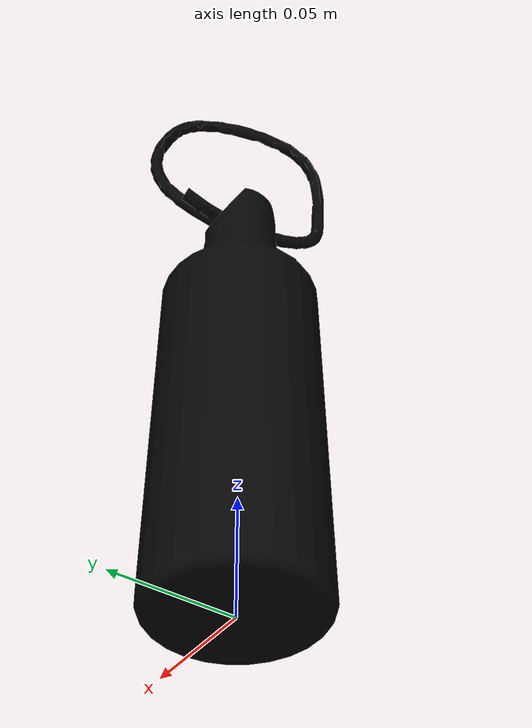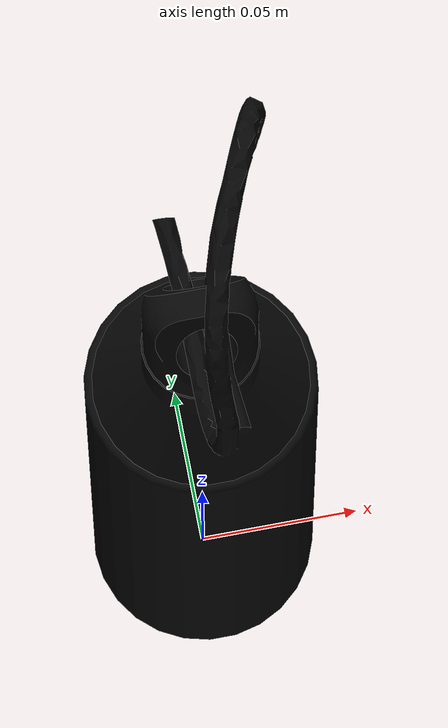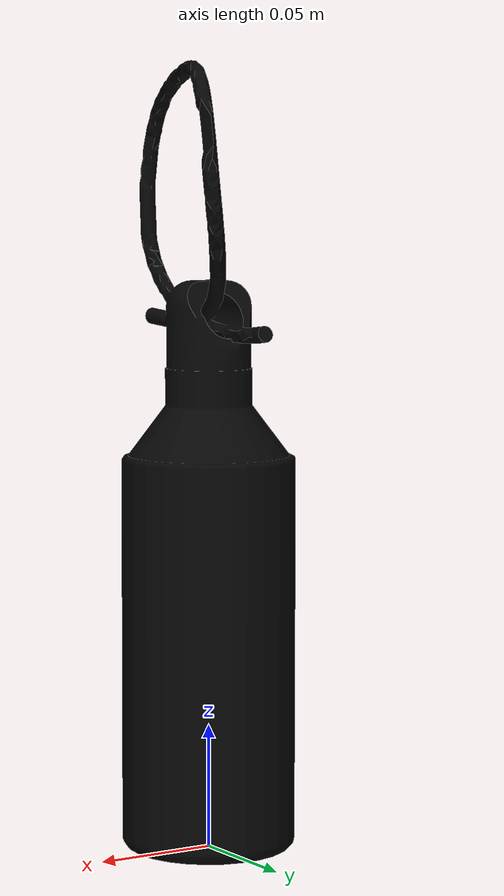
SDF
<?xml version="1.0"?>
<sdf version="1.7">
  <model name="bottle">
    <static>true</static>
    <link name="main_link">
      <collision name="plane_collision">
        <geometry>
          <mesh>
            <uri>model://bottle/meshes/bottle.dae</uri>
          </mesh>
        </geometry>
      </collision>
      <visual name="plane_visual">
        <geometry>
          <mesh>
            <uri>model://bottle/meshes/bottle.dae</uri>
          </mesh>
        </geometry>
        <material>
          <script>
            <uri>model://bottle/materials/scripts</uri>
            <uri>model://bottle/materials/textures</uri>
            <name>Bottle/Material</name>
          </script>
        </material>
      </visual>
    </link>
  </model>
</sdf>
